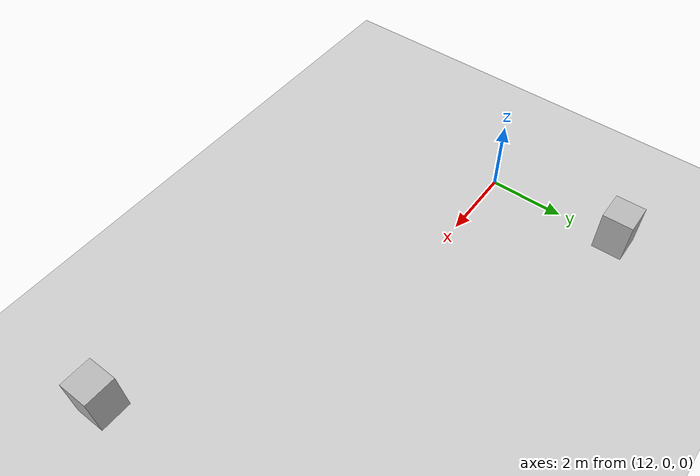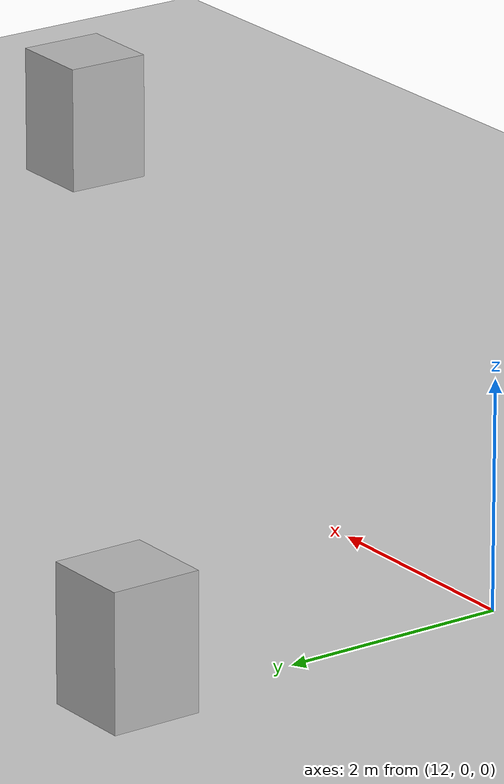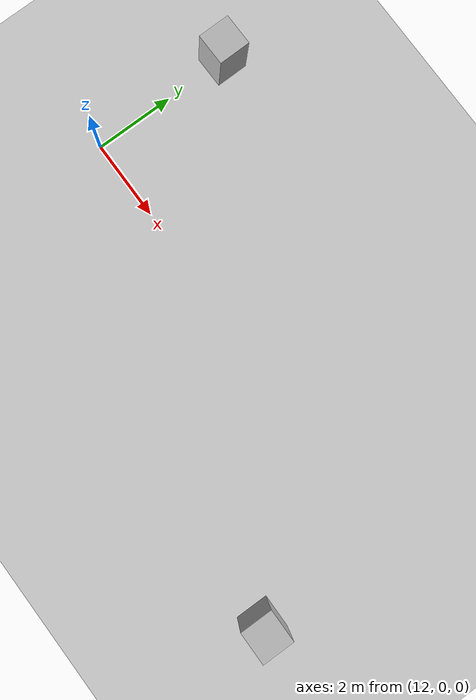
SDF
<?xml version="1.0"?>
<sdf version="1.6">
  <world name="v2-04e2-cruise-s4711">
    <gravity>0 0 -9.81</gravity>
    <physics name="v2_deterministic" type="ode">
      <max_step_size>0.002</max_step_size>
      <real_time_update_rate>500</real_time_update_rate>
    </physics>
    <include>
      <uri>model://sun</uri>
    </include>
    <include>
      <uri>model://ground_plane</uri>
    </include>
    <model name="cruise-left">
      <static>true</static>
      <pose>12.034094002 3.555992569 0.600000000 0 0 0.009755845</pose>
      <link name="link">
        <collision name="collision">
          <geometry>
            <box>
              <size>0.800000 0.800000 1.200000</size>
            </box>
          </geometry>
        </collision>
        <visual name="visual">
          <geometry>
            <box>
              <size>0.800000 0.800000 1.200000</size>
            </box>
          </geometry>
        </visual>
      </link>
    </model>
    <model name="cruise-right">
      <static>true</static>
      <pose>22.972778424 -3.459634440 0.600000000 0 0 -0.009339141</pose>
      <link name="link">
        <collision name="collision">
          <geometry>
            <box>
              <size>0.800000 0.800000 1.200000</size>
            </box>
          </geometry>
        </collision>
        <visual name="visual">
          <geometry>
            <box>
              <size>0.800000 0.800000 1.200000</size>
            </box>
          </geometry>
        </visual>
      </link>
    </model>
  </world>
</sdf>
